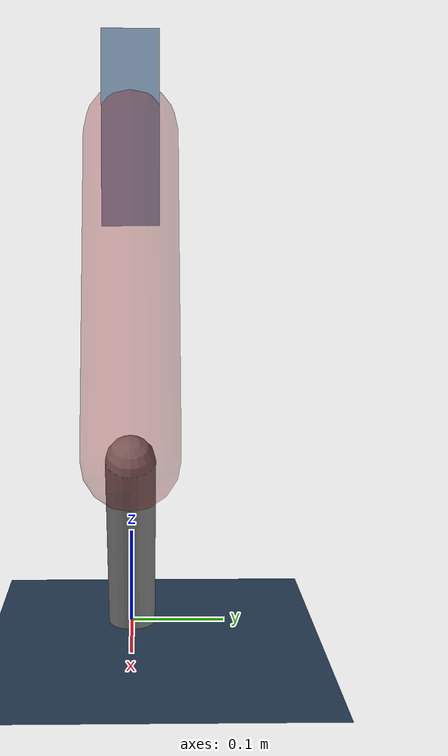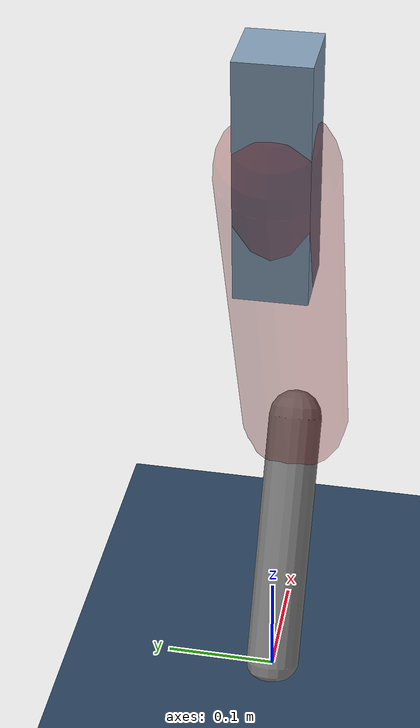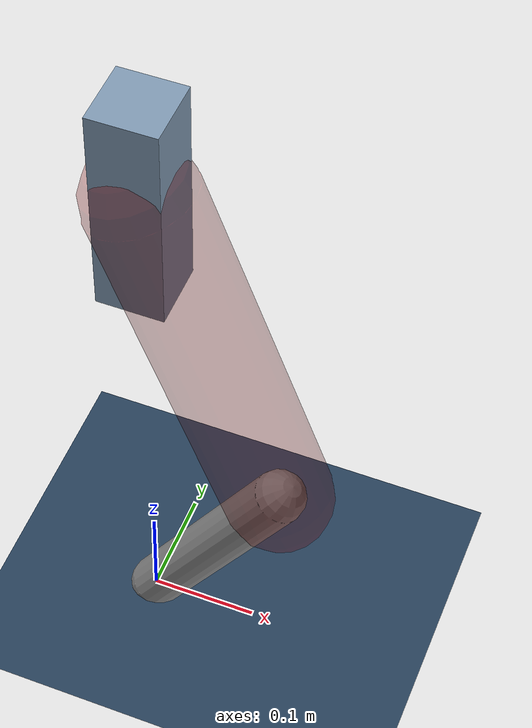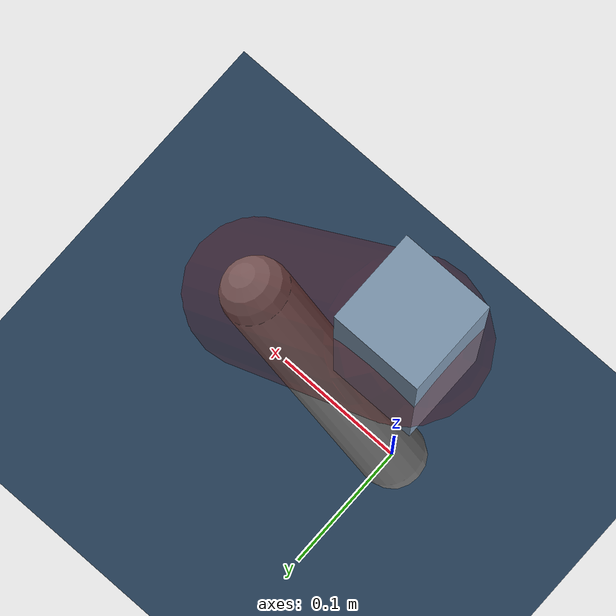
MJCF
<mujoco model="Hopper2D">
	<compiler inertiafromgeom="true" angle="radian" />
	<option timestep="0.001" integrator="implicit" cone="elliptic" solver="Newton" tolerance="1e-10" />

	<default>
		<geom contype="1" conaffinity="1" condim="3" friction="2 0.005 0.0001" solref="0.005 1" />
		<joint limited="true" damping="0.1" />
	</default>

	<asset>
		<texture name="skybox" type="skybox" builtin="gradient" rgb1=".4 .6 .8" rgb2="0 0 0" width="800" height="800" />
		<texture name="grid" type="2d" builtin="checker" rgb1=".1 .2 .3" rgb2=".2 .3 .4" width="300" height="300" mark="edge" markrgb=".2 .3 .4" />
		<material name="ground" texture="grid" texrepeat="1 1" texuniform="true" reflectance="0.1" />
		<material name="leg" rgba="0.5 0.6 0.7 1" />
	</asset>

	<worldbody>

		<geom name="floor" type="plane" size="5 5 0.25" material="ground" />

		<light directional="false" diffuse="0.8 0.8 0.8" specular="0.3 0.3 0.3" pos="0 0 2" dir="0 0 -1" />
		<light mode="targetbodycom" target="base" directional="false" diffuse="0.8 0.8 0.8" specular="0.3 0.3 0.3" pos="0 0 2" dir="0 0 -1" />

		<camera name="fixed" pos="0 -2 1" xyaxes="1 0 0 0 0 1" />
		<camera name="tracking" mode="trackcom" pos="0 -3 1" />

		<body name="root" pos="0 0 0.531779721098158">
			<joint name="slide_x" type="slide" axis="1 0 0" range="-100 100" />
			<joint name="slide_z" type="slide" axis="0 0 1" range="0 10" />

			<body name="base" pos="0 0 0">
				<geom name="torso" type="box" size="0.03 0.03 0.1" mass="1.6179999999999999" material="leg" />

				<body name="link1" pos="0 0 0" euler="0 1.2118892208916967 0">
					<joint type="hinge" axis="0 -1 0" pos="0 0 0" name="hinge1" limited="true" range="-3.14 3.14" stiffness="0" damping="0.1" />
					<geom name="thigh" type="capsule" fromto="0 0 0 0.3499608600592793 0 0" size="0.05" rgba="0.5 0 0 0.3" mass="1.126590408165982" />

					<body name="link2" pos="0.3499608600592793 0 0" euler="0 0.9009583337113862 0">
						<joint type="hinge" axis="0 -1 0" pos="0 0 0" name="hinge2" limited="true" range="-3.14 3.14" stiffness="0" damping="0.1" />
						<geom name="shank" type="capsule" fromto="0 0 0 0.23827395632356446 0 0" size="0.025" mass="0.4328191650588516" />

					</body>
				</body>
			</body>
		</body>
	</worldbody>

	<actuator>
		<motor name="torque1" joint="hinge1" ctrlrange="-31.337095609501464 31.337095609501464" ctrllimited="true" gear="1" />
		<motor name="torque2" joint="hinge2" ctrlrange="-53.03960784382254 53.03960784382254" ctrllimited="true" gear="1" />
	</actuator>
</mujoco>
